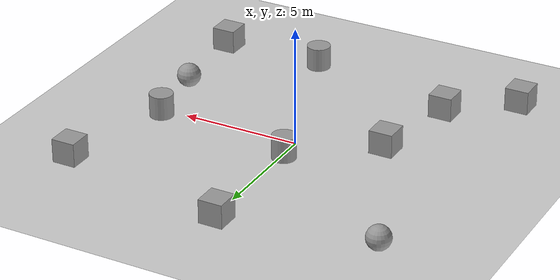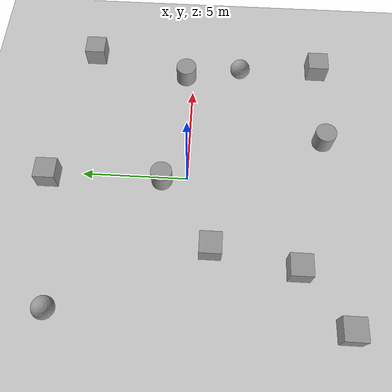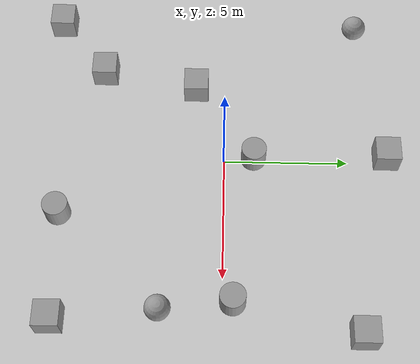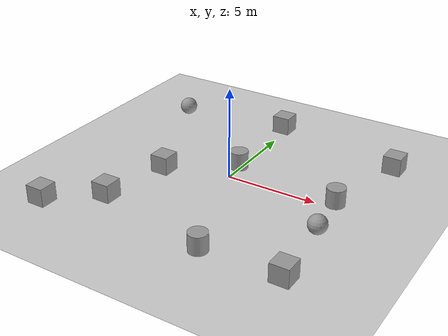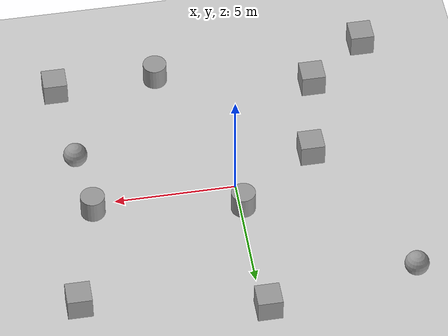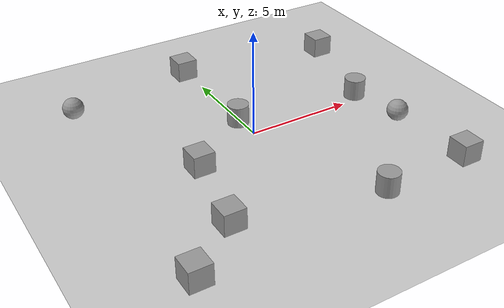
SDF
<sdf version="1.7">
 <world name="default">
  <light name="sun" type="directional">
   <pose>0 0 10 0 -0 0</pose>
   <diffuse>0.8 0.8 0.8 1</diffuse>
   <specular>0.2 0.2 0.2 1</specular>
   <attenuation>
    <range>1000</range>
    <constant>0.9</constant>
    <linear>0.01</linear>
    <quadratic>0.001</quadratic>
   </attenuation>
   <direction>-0.5 0.1 -0.9</direction>
   <spot><inner_angle>0</inner_angle><outer_angle>0</outer_angle><falloff>0</falloff></spot>
  </light>
  <model name="ground_plane">
   <static>1</static>
   <link name="link">
    <collision name="collision">
     <geometry><plane><normal>0 0 1</normal><size>100 100</size></plane></geometry>
     <surface>
      <contact><collide_bitmask>65535</collide_bitmask></contact>
      <friction><ode><mu>100</mu><mu2>50</mu2></ode></friction>
     </surface>
    </collision>
    <visual name="visual">
     <cast_shadows>0</cast_shadows>
     <geometry><plane><normal>0 0 1</normal><size>100 100</size></plane></geometry>
     <material>
      <script><uri>file://media/materials/scripts/gazebo.material</uri><name>Gazebo/Grey</name></script>
     </material>
    </visual>
   </link>
  </model>
  <gravity>0 0 -9.8</gravity>
  <magnetic_field>6e-06 2.3e-05 -4.2e-05</magnetic_field>
  <atmosphere type="adiabatic"/>
  <physics type="ode">
   <max_step_size>0.001</max_step_size>
   <real_time_factor>1</real_time_factor>
   <real_time_update_rate>1000</real_time_update_rate>
  </physics>
  <scene><ambient>0.4 0.4 0.4 1</ambient><background>0.7 0.7 0.7 1</background><shadows>1</shadows></scene>
  <spherical_coordinates>
   <surface_model>EARTH_WGS84</surface_model>
   <latitude_deg>0</latitude_deg>
   <longitude_deg>0</longitude_deg>
   <elevation>0</elevation>
   <heading_deg>0</heading_deg>
  </spherical_coordinates>
  <model name="unit_box">
   <pose>-3.37913 -1.20159 0.499995 0 1e-05 0</pose>
   <link name="link">
    <inertial>
     <mass>1</mass>
     <inertia>
      <ixx>0.166667</ixx>
      <ixy>0</ixy>
      <ixz>0</ixz>
      <iyy>0.166667</iyy>
      <iyz>0</iyz>
      <izz>0.166667</izz>
     </inertia>
    </inertial>
    <collision name="collision"><geometry><box><size>1 1 1</size></box></geometry></collision>
    <visual name="visual">
     <geometry><box><size>1 1 1</size></box></geometry>
     <material>
      <script><name>Gazebo/Grey</name><uri>file://media/materials/scripts/gazebo.material</uri></script>
     </material>
    </visual>
   </link>
  </model>
  <model name="unit_cylinder">
   <pose>2.38813 -6.51734 0.499998 3e-06 -3e-06 0</pose>
   <link name="link">
    <inertial>
     <mass>1</mass>
     <inertia><ixx>0.145833</ixx><ixy>0</ixy><ixz>0</ixz><iyy>0.145833</iyy><iyz>0</iyz><izz>0.125</izz></inertia>
    </inertial>
    <collision name="collision">
     <geometry><cylinder><radius>0.5</radius><length>1</length></cylinder></geometry>
    </collision>
    <visual name="visual">
     <geometry><cylinder><radius>0.5</radius><length>1</length></cylinder></geometry>
     <material>
      <script><name>Gazebo/Grey</name><uri>file://media/materials/scripts/gazebo.material</uri></script>
     </material>
    </visual>
   </link>
  </model>
  <model name="unit_box_0">
   <pose>-6.63957 -7.08139 0.499995 0 1e-05 0</pose>
   <link name="link">
    <inertial>
     <mass>1</mass>
     <inertia>
      <ixx>0.166667</ixx>
      <ixy>0</ixy>
      <ixz>0</ixz>
      <iyy>0.166667</iyy>
      <iyz>0</iyz>
      <izz>0.166667</izz>
     </inertia>
    </inertial>
    <collision name="collision"><geometry><box><size>1 1 1</size></box></geometry></collision>
    <visual name="visual">
     <geometry><box><size>1 1 1</size></box></geometry>
     <material>
      <script><name>Gazebo/Grey</name><uri>file://media/materials/scripts/gazebo.material</uri></script>
     </material>
    </visual>
   </link>
  </model>
  <model name="unit_cylinder_0">
   <pose>5.95355 0.398976 0.499998 3e-06 -4e-06 0</pose>
   <link name="link">
    <inertial>
     <mass>1</mass>
     <inertia><ixx>0.145833</ixx><ixy>0</ixy><ixz>0</ixz><iyy>0.145833</iyy><iyz>0</iyz><izz>0.125</izz></inertia>
    </inertial>
    <collision name="collision">
     <geometry><cylinder><radius>0.5</radius><length>1</length></cylinder></geometry>
    </collision>
    <visual name="visual">
     <geometry><cylinder><radius>0.5</radius><length>1</length></cylinder></geometry>
     <material>
      <script><name>Gazebo/Grey</name><uri>file://media/materials/scripts/gazebo.material</uri></script>
     </material>
    </visual>
   </link>
  </model>
  <model name="unit_sphere">
   <pose>-6.42456 5.57505 0.5 0 -0 0</pose>
   <link name="link">
    <inertial>
     <mass>1</mass>
     <inertia><ixx>0.1</ixx><ixy>0</ixy><ixz>0</ixz><iyy>0.1</iyy><iyz>0</iyz><izz>0.1</izz></inertia>
    </inertial>
    <collision name="collision"><geometry><sphere><radius>0.5</radius></sphere></geometry></collision>
    <visual name="visual">
     <geometry><sphere><radius>0.5</radius></sphere></geometry>
     <material>
      <script><name>Gazebo/Grey</name><uri>file://media/materials/scripts/gazebo.material</uri></script>
     </material>
    </visual>
   </link>
  </model>
  <model name="unit_cylinder_1">
   <pose>-0.128878 1.19315 0.499998 3e-06 -4e-06 0</pose>
   <link name="link">
    <inertial>
     <mass>1</mass>
     <inertia><ixx>0.145833</ixx><ixy>0</ixy><ixz>0</ixz><iyy>0.145833</iyy><iyz>0</iyz><izz>0.125</izz></inertia>
    </inertial>
    <collision name="collision">
     <geometry><cylinder><radius>0.5</radius><length>1</length></cylinder></geometry>
    </collision>
    <visual name="visual">
     <geometry><cylinder><radius>0.5</radius><length>1</length></cylinder></geometry>
     <material>
      <script><name>Gazebo/Grey</name><uri>file://media/materials/scripts/gazebo.material</uri></script>
     </material>
    </visual>
   </link>
  </model>
  <model name="unit_box_1">
   <pose>-0.226201 6.5598 0.499995 0 1e-05 0</pose>
   <link name="link">
    <inertial>
     <mass>1</mass>
     <inertia>
      <ixx>0.166667</ixx>
      <ixy>0</ixy>
      <ixz>0</ixz>
      <iyy>0.166667</iyy>
      <iyz>0</iyz>
      <izz>0.166667</izz>
     </inertia>
    </inertial>
    <collision name="collision"><geometry><box><size>1 1 1</size></box></geometry></collision>
    <visual name="visual">
     <geometry><box><size>1 1 1</size></box></geometry>
     <material>
      <script><name>Gazebo/Grey</name><uri>file://media/materials/scripts/gazebo.material</uri></script>
     </material>
    </visual>
   </link>
  </model>
  <model name="unit_box_2">
   <pose>6.70315 -6.38218 0.499995 -1e-05 -0 -0</pose>
   <link name="link">
    <inertial>
     <mass>1</mass>
     <inertia>
      <ixx>0.166667</ixx>
      <ixy>0</ixy>
      <ixz>0</ixz>
      <iyy>0.166667</iyy>
      <iyz>0</iyz>
      <izz>0.166667</izz>
     </inertia>
    </inertial>
    <collision name="collision"><geometry><box><size>1 1 1</size></box></geometry></collision>
    <visual name="visual">
     <geometry><box><size>1 1 1</size></box></geometry>
     <material>
      <script><name>Gazebo/Grey</name><uri>file://media/materials/scripts/gazebo.material</uri></script>
     </material>
    </visual>
   </link>
  </model>
  <model name="unit_box_3">
   <pose>-4.14189 -5.07851 0.499995 0 1e-05 0</pose>
   <link name="link">
    <inertial>
     <mass>1</mass>
     <inertia>
      <ixx>0.166667</ixx>
      <ixy>0</ixy>
      <ixz>0</ixz>
      <iyy>0.166667</iyy>
      <iyz>0</iyz>
      <izz>0.166667</izz>
     </inertia>
    </inertial>
    <collision name="collision"><geometry><box><size>1 1 1</size></box></geometry></collision>
    <visual name="visual">
     <geometry><box><size>1 1 1</size></box></geometry>
     <material>
      <script><name>Gazebo/Grey</name><uri>file://media/materials/scripts/gazebo.material</uri></script>
     </material>
    </visual>
   </link>
  </model>
  <model name="unit_sphere_0">
   <pose>6.32005 -2.3877 0.5 0 -0 0</pose>
   <link name="link">
    <inertial>
     <mass>1</mass>
     <inertia><ixx>0.1</ixx><ixy>0</ixy><ixz>0</ixz><iyy>0.1</iyy><iyz>0</iyz><izz>0.1</izz></inertia>
    </inertial>
    <collision name="collision"><geometry><sphere><radius>0.5</radius></sphere></geometry></collision>
    <visual name="visual">
     <geometry><sphere><radius>0.5</radius></sphere></geometry>
     <material>
      <script><name>Gazebo/Grey</name><uri>file://media/materials/scripts/gazebo.material</uri></script>
     </material>
    </visual>
   </link>
  </model>
  <model name="unit_box_4">
   <pose>7.14241 5.24394 0.5 0 -0 0</pose>
   <link name="link">
    <inertial>
     <mass>1</mass>
     <inertia>
      <ixx>0.166667</ixx>
      <ixy>0</ixy>
      <ixz>0</ixz>
      <iyy>0.166667</iyy>
      <iyz>0</iyz>
      <izz>0.166667</izz>
     </inertia>
    </inertial>
    <collision name="collision"><geometry><box><size>1 1 1</size></box></geometry></collision>
    <visual name="visual">
     <geometry><box><size>1 1 1</size></box></geometry>
     <material>
      <script><name>Gazebo/Grey</name><uri>file://media/materials/scripts/gazebo.material</uri></script>
     </material>
    </visual>
   </link>
  </model>
  <plugin name="gazebo_ros_factory" filename="libgazebo_ros_factory.so"/>
 </world>
</sdf>
